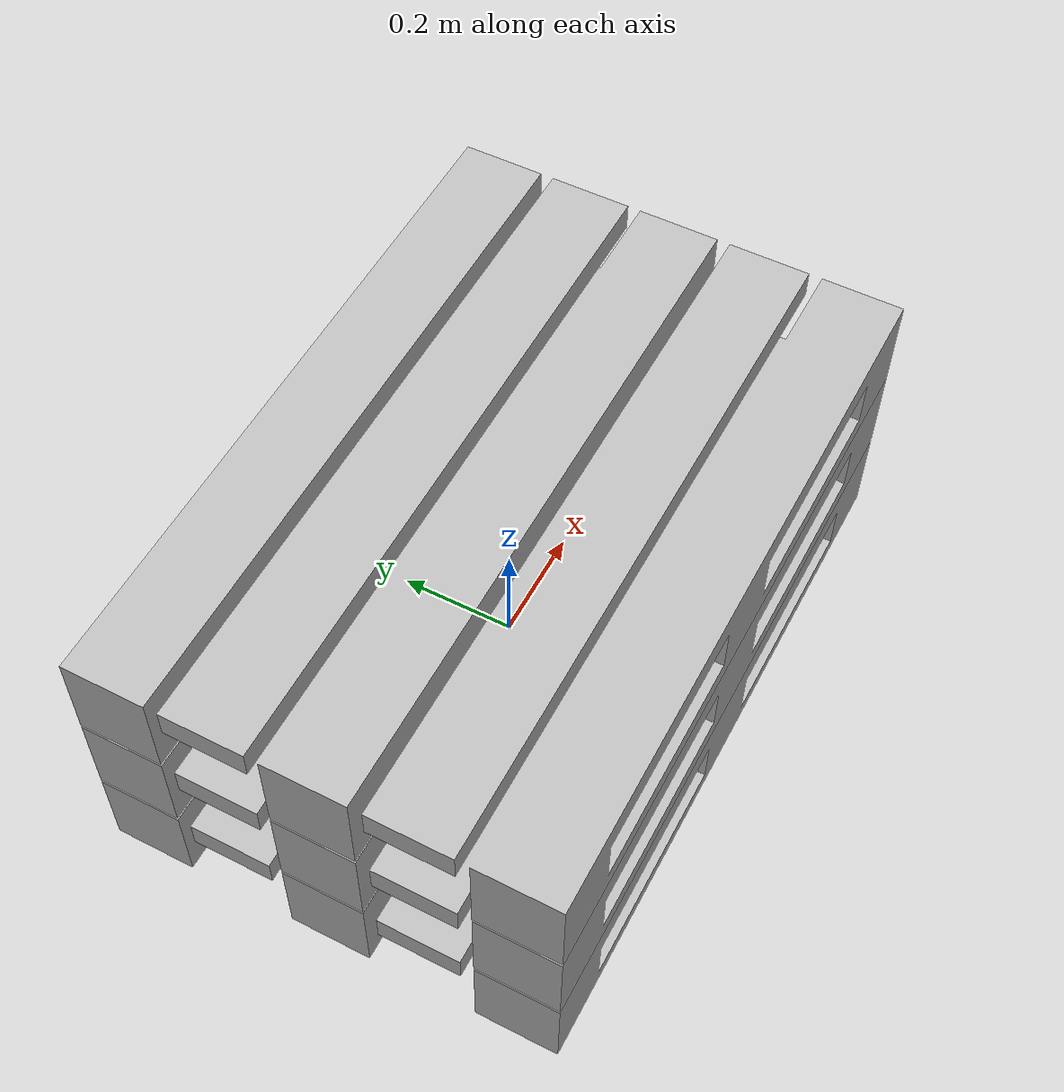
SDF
<?xml version='1.0'?>
<sdf version='1.6'>
  <model name='wooden_pallet_pile1'>
    <link name='body'>
	  <inertial>
        <mass>20.0</mass>
        <pose frame=''>0 0 0 0 0 0</pose>
        <inertia>
      	  <ixx> 1.517333333 </ixx>
      	  <ixy> 0.0 </ixy>
      	  <ixz> 0.0 </ixz>
      	  <iyy> 2.850666667 </iyy>
      	  <iyz> 0.0 </iyz>
      	  <izz> 3.466666667 </izz>
        </inertia>
      </inertial>
      <pose frame=''>0 0 0 0 0 0</pose>
      <self_collide>0</self_collide>
      <kinematic>0</kinematic>
      <gravity>1</gravity>
      <visual name='visual'>
        <geometry>
          <mesh>
            <uri>model://WoodenPalletPile1.dae</uri>
          </mesh>
        </geometry>
		<meta> <layer> 1 </layer></meta>
      </visual>
      <collision name='collision_0'>
        <laser_retro>0</laser_retro>
        <max_contacts>10</max_contacts>
        <pose frame=''>0 0 0 0 -0 0</pose>
        <geometry>
          <mesh>
            <uri>model://WoodenPalletPile1.dae</uri>
            <scale>1 1 1</scale>
          </mesh>
        </geometry>
		<surface>
          <friction>
            <ode>
              <mu>0.4</mu>
              <mu2>0.4</mu2>
              <fdir1>0 0 0</fdir1>
              <slip1>0</slip1>
              <slip2>0</slip2>
            </ode>
            <torsional>
              <coefficient>1</coefficient>
              <patch_radius>0</patch_radius>
              <surface_radius>0</surface_radius>
              <use_patch_radius>1</use_patch_radius>
              <ode>
                <slip>0</slip>
              </ode>
            </torsional>
          </friction>
        </surface>
      </collision>
    </link>
    <static>true</static>
  </model>
</sdf>
